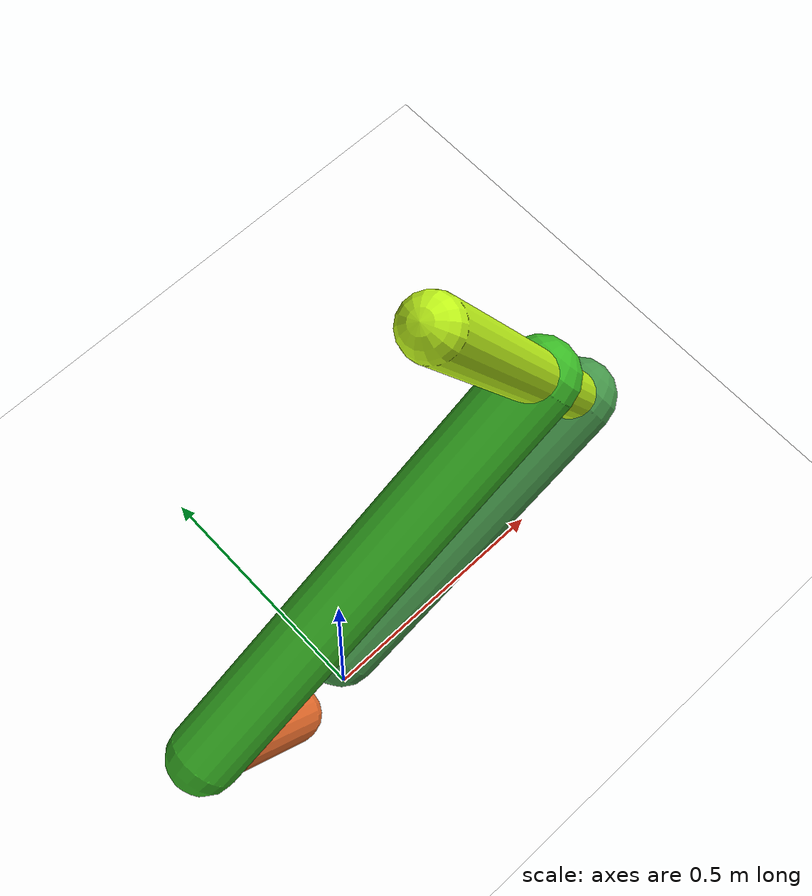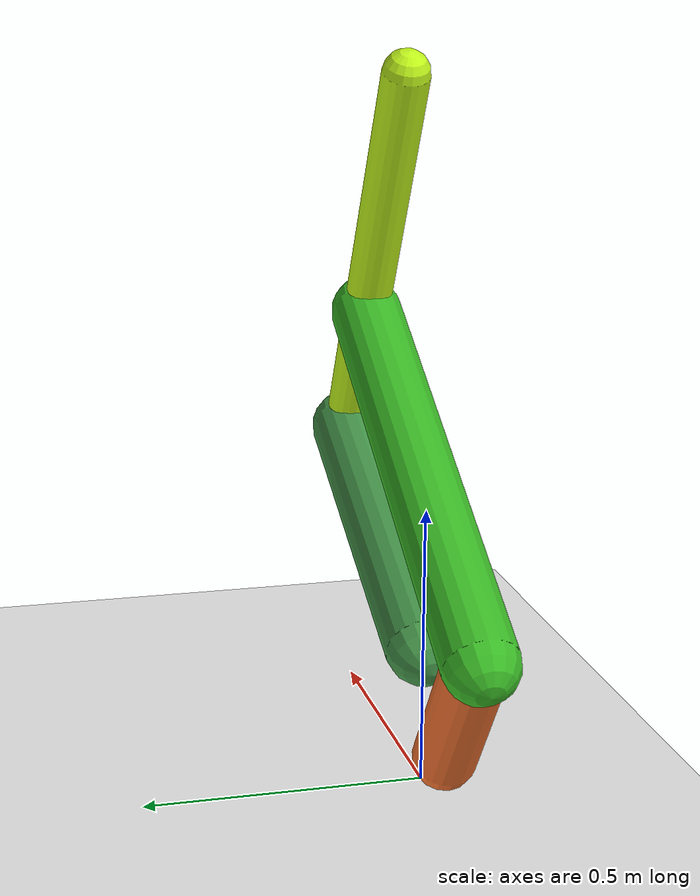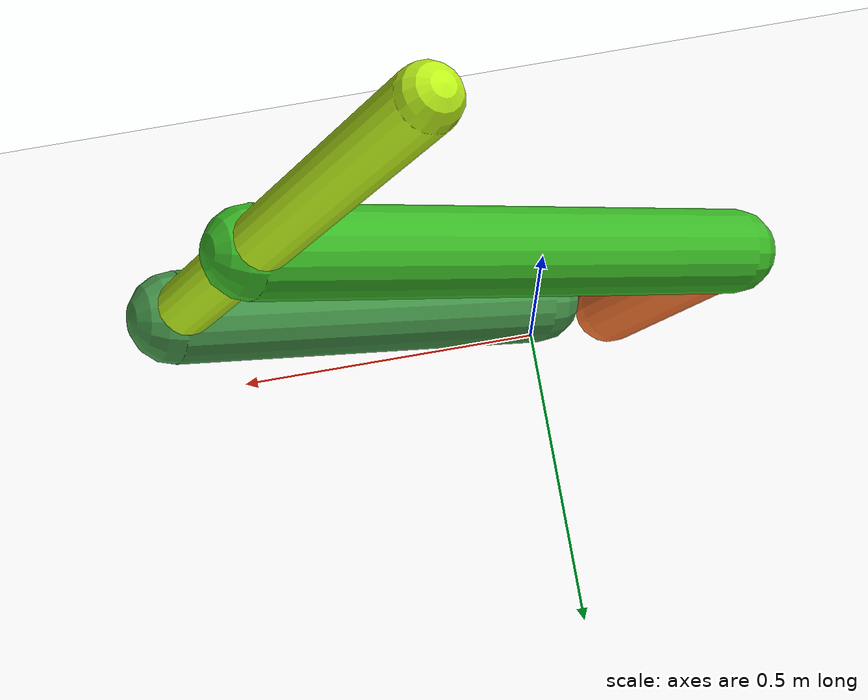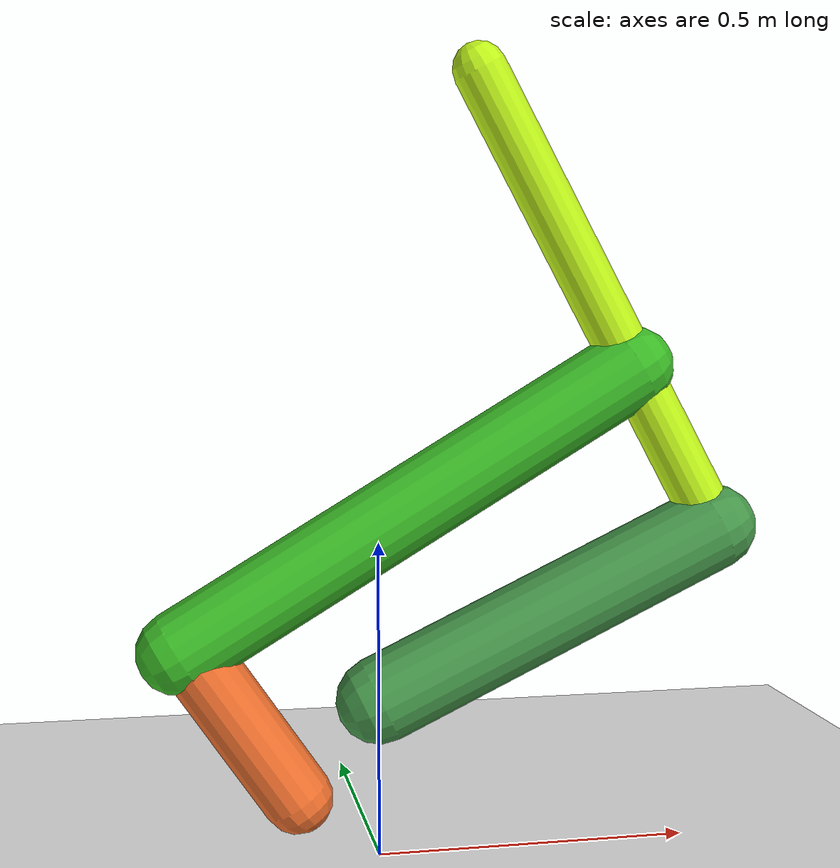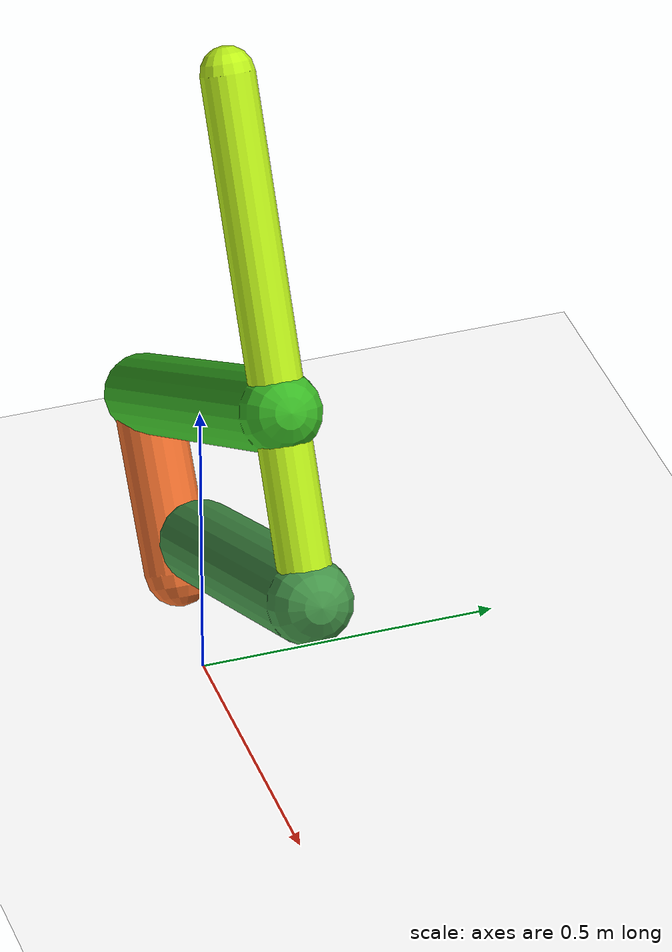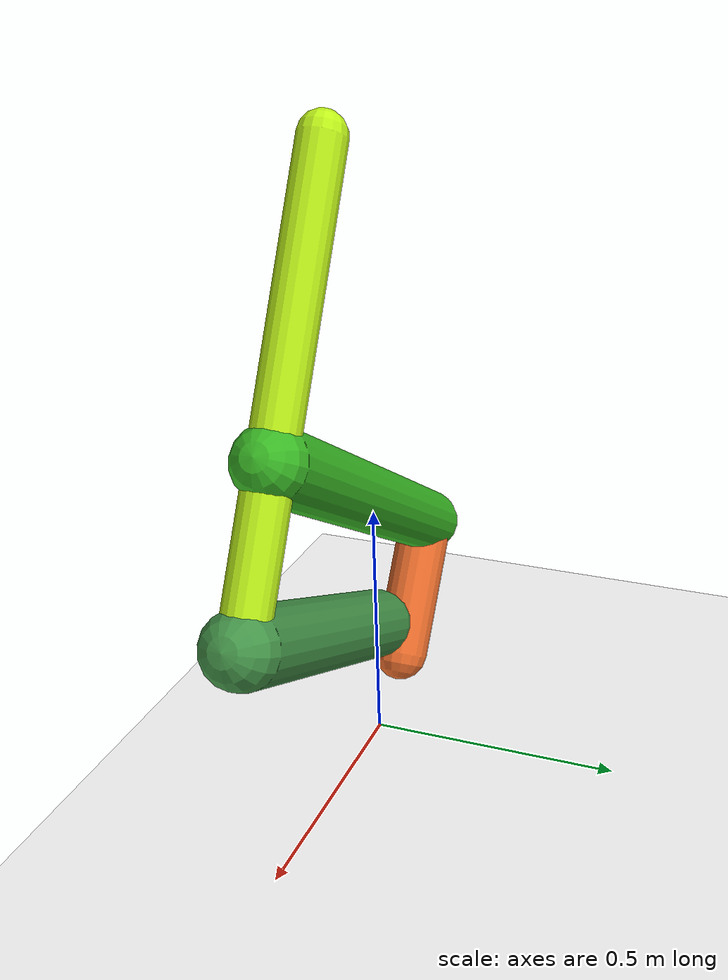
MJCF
<mujoco model="morphology">
  <option timestep="0.01"/>
  <default>
    <default class="/"/>
  </default>
  <asset>
    <texture name="texplane" type="2d" builtin="checker" rgb1="0.1 0.2 0.3" rgb2="0.2 0.3 0.4" width="300" height="300"/>
    <material name="MatPlane" class="/" texture="texplane" texrepeat="20 20" specular="1" shininess="1" reflectance="0.5"/>
  </asset>
  <worldbody>
    <light name="//unnamed_light_0" class="/" directional="true" pos="0 0 1.5" dir="0 0 -1.3" cutoff="1e+02" exponent="1" diffuse="1 1 1" specular="0.1 0.1 0.1"/>
    <geom name="ground" class="/" type="plane" size="15 15 0.5" material="MatPlane" rgba="1 1 1 1"/>
    <body name="body" pos="0 0 0.25">
      <geom name="geom0" class="/" type="capsule" contype="1" conaffinity="1" condim="3" size="0.069" rgba="0.27 0.59 0.29 1" friction="0.4 0.1 0.1" fromto="0 0 0 0.55 0 0.26"/>
      <body name="body1" pos="0.55 0 0.26">
        <geom name="geom1" class="/" type="capsule" contype="1" conaffinity="1" condim="3" size="0.043" rgba="0.75 0.96 0.1 1" friction="0.4 0.1 0.1" fromto="0 0 0 -0.39 0 0.72"/>
        <body name="body2" pos="-0.14 0 0.26">
          <geom name="geom2" class="/" type="capsule" contype="1" conaffinity="1" condim="3" size="0.066" rgba="0.23 0.73 0.15 1" friction="0.4 0.1 0.1" fromto="0 0 0 -0.72 0 -0.43"/>
          <body name="body3" pos="-0.71 0 -0.42">
            <geom name="geom3" class="/" type="capsule" contype="1" conaffinity="1" condim="3" size="0.056" rgba="0.94 0.44 0.18 1" friction="0.4 0.1 0.1" fromto="0 0 0 0.17 0 -0.25"/>
            <joint name="joint3" class="/" type="hinge" axis="0 1 0" limited="true" stiffness="20" range="-59 59" armature="0.1" damping="2"/>
          </body>
          <joint name="joint2" class="/" type="hinge" axis="0 1 0" limited="true" stiffness="20" range="-60 60" armature="0.1" damping="2"/>
        </body>
        <joint name="joint1" class="/" type="hinge" axis="0 1 0" limited="true" stiffness="20" range="-37 37" armature="0.1" damping="2"/>
      </body>
      <joint name="rootx" class="/" type="slide" axis="1 0 0" limited="false" stiffness="0" armature="0" damping="0"/>
      <joint name="rootz" class="/" type="slide" axis="0 0 1" limited="false" stiffness="0" armature="0" damping="0"/>
      <joint name="rooty" class="/" type="hinge" axis="0 1 0" limited="false" stiffness="0" armature="0" damping="0"/>
    </body>
  </worldbody>
  <actuator>
    <motor name="motor3" class="/" ctrllimited="true" ctrlrange="-1 1" gear="1.1e+02" joint="joint3"/>
    <motor name="motor2" class="/" ctrllimited="true" ctrlrange="-1 1" gear="1e+02" joint="joint2"/>
    <motor name="motor1" class="/" ctrllimited="true" ctrlrange="-1 1" gear="1.5e+02" joint="joint1"/>
  </actuator>
  <sensor>
    <subtreelinvel name="velocity" body="body"/>
  </sensor>
</mujoco>
